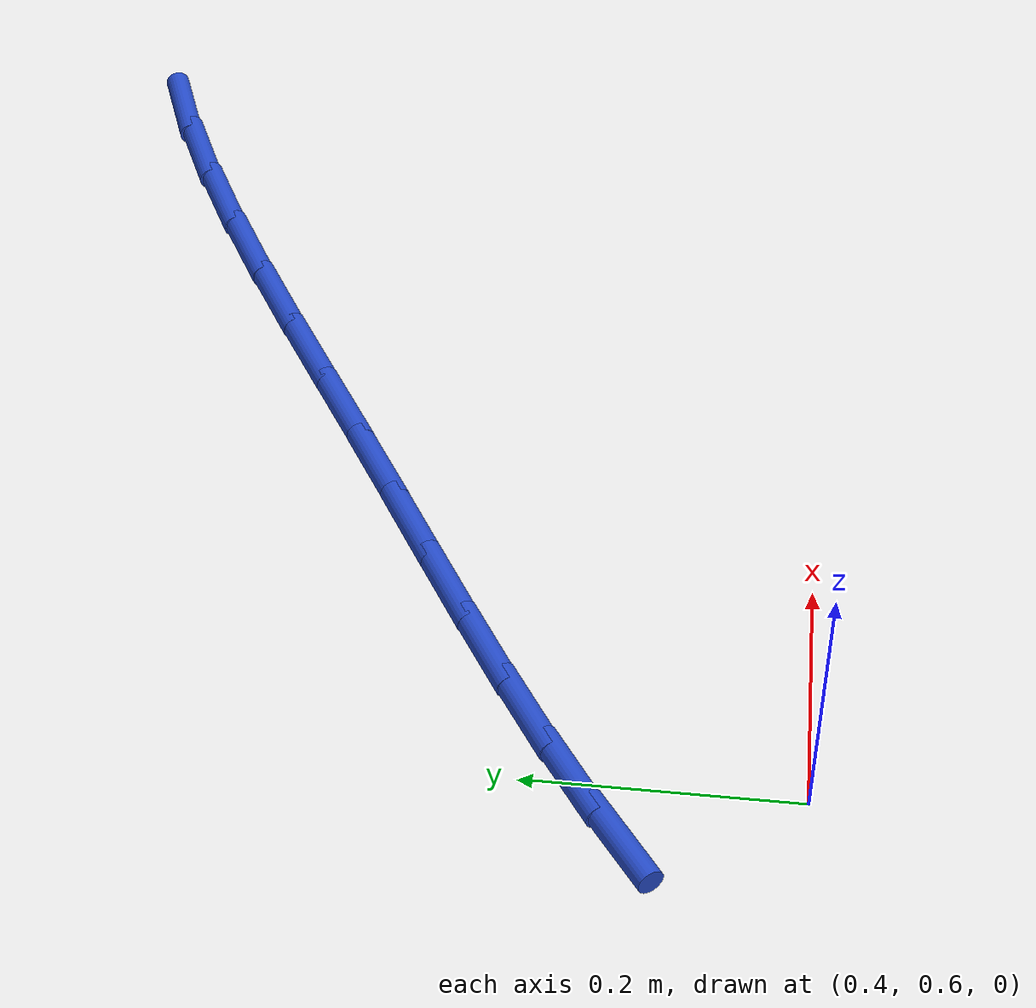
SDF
<sdf version="1.6">
 <world name="default">
  <model name="ground_plane">
   <static>1</static>
   <link name="link">
    <collision name="collision">
     <geometry><plane><normal>0 0 1</normal><size>100 100</size></plane></geometry>
     <surface><friction><ode><mu>100</mu><mu2>50</mu2></ode></friction></surface>
    </collision>
    <visual name="visual">
     <cast_shadows>0</cast_shadows>
     <geometry><plane><normal>0 0 1</normal><size>100 100</size></plane></geometry>
     <material>
      <script><uri>file://media/materials/scripts/gazebo.material</uri><name>Gazebo/WhiteGlow</name></script>
     </material>
    </visual>
   </link>
  </model>
  <model name="line">
   <link name="link_13">
    <pose>0.3471662750646311 0.7265214385461141 0.01 0 1.57 0.6140996113163534</pose>
    <collision name="collision">
     <geometry><cylinder><radius>0.01</radius><length>0.08</length></cylinder></geometry>
    </collision>
    <visual name="visual">
     <material>
      <script><name>Gazebo/Blue</name><uri>file://media/materials/scripts/gazebo.material</uri></script>
     </material>
     <geometry><cylinder><radius>0.01</radius><length>0.08</length></cylinder></geometry>
    </visual>
   </link>
   <link name="link_14">
    <pose>0.3993014699873902 0.7632787661004067 0.01 0 1.57 0.5737753299547165</pose>
    <collision name="collision">
     <geometry><cylinder><radius>0.01</radius><length>0.08</length></cylinder></geometry>
    </collision>
    <visual name="visual">
     <material>
      <script><name>Gazebo/Blue</name><uri>file://media/materials/scripts/gazebo.material</uri></script>
     </material>
     <geometry><cylinder><radius>0.01</radius><length>0.08</length></cylinder></geometry>
    </visual>
   </link>
   <link name="link_15">
    <pose>0.45385488425218723 0.7985370679839667 0.01 0 1.57 0.5437025057210536</pose>
    <collision name="collision">
     <geometry><cylinder><radius>0.01</radius><length>0.08</length></cylinder></geometry>
    </collision>
    <visual name="visual">
     <material>
      <script><name>Gazebo/Blue</name><uri>file://media/materials/scripts/gazebo.material</uri></script>
     </material>
     <geometry><cylinder><radius>0.01</radius><length>0.08</length></cylinder></geometry>
    </visual>
   </link>
   <link name="link_16">
    <pose>0.5105116890601844 0.8327846173130551 0.01 0 1.57 0.5233629050173269</pose>
    <collision name="collision">
     <geometry><cylinder><radius>0.01</radius><length>0.08</length></cylinder></geometry>
    </collision>
    <visual name="visual">
     <material>
      <script><name>Gazebo/Blue</name><uri>file://media/materials/scripts/gazebo.material</uri></script>
     </material>
     <geometry><cylinder><radius>0.01</radius><length>0.08</length></cylinder></geometry>
    </visual>
   </link>
   <link name="link_17">
    <pose>0.5689570556125434 0.8665096872039317 0.01 0 1.57 0.5122166460320136</pose>
    <collision name="collision">
     <geometry><cylinder><radius>0.01</radius><length>0.08</length></cylinder></geometry>
    </collision>
    <visual name="visual">
     <material>
      <script><name>Gazebo/Blue</name><uri>file://media/materials/scripts/gazebo.material</uri></script>
     </material>
     <geometry><cylinder><radius>0.01</radius><length>0.08</length></cylinder></geometry>
    </visual>
   </link>
   <link name="link_18">
    <pose>0.6288761551104262 0.900200550772857 0.01 0 1.57 0.5097557498573061</pose>
    <collision name="collision">
     <geometry><cylinder><radius>0.01</radius><length>0.08</length></cylinder></geometry>
    </collision>
    <visual name="visual">
     <material>
      <script><name>Gazebo/Blue</name><uri>file://media/materials/scripts/gazebo.material</uri></script>
     </material>
     <geometry><cylinder><radius>0.01</radius><length>0.08</length></cylinder></geometry>
    </visual>
   </link>
   <link name="link_19">
    <pose>0.6899541587549947 0.9343454811360915 0.01 0 1.57 0.5152826105698136</pose>
    <collision name="collision">
     <geometry><cylinder><radius>0.01</radius><length>0.08</length></cylinder></geometry>
    </collision>
    <visual name="visual">
     <material>
      <script><name>Gazebo/Blue</name><uri>file://media/materials/scripts/gazebo.material</uri></script>
     </material>
     <geometry><cylinder><radius>0.01</radius><length>0.08</length></cylinder></geometry>
    </visual>
   </link>
   <link name="link_20">
    <pose>0.7518779576738126 0.9694138436906498 0.01 0 1.57 0.5207316458937341</pose>
    <collision name="collision">
     <geometry><cylinder><radius>0.01</radius><length>0.08</length></cylinder></geometry>
    </collision>
    <visual name="visual">
     <material>
      <script><name>Gazebo/Blue</name><uri>file://media/materials/scripts/gazebo.material</uri></script>
     </material>
     <geometry><cylinder><radius>0.01</radius><length>0.08</length></cylinder></geometry>
    </visual>
   </link>
   <link name="link_21">
    <pose>0.8143897958300643 1.0052664918212177 0.01 0 1.57 0.5170604467265502</pose>
    <collision name="collision">
     <geometry><cylinder><radius>0.01</radius><length>0.08</length></cylinder></geometry>
    </collision>
    <visual name="visual">
     <material>
      <script><name>Gazebo/Blue</name><uri>file://media/materials/scripts/gazebo.material</uri></script>
     </material>
     <geometry><cylinder><radius>0.01</radius><length>0.08</length></cylinder></geometry>
    </visual>
   </link>
   <link name="link_22">
    <pose>0.877297793544305 1.0410400783482823 0.01 0 1.57 0.5037556133075145</pose>
    <collision name="collision">
     <geometry><cylinder><radius>0.01</radius><length>0.08</length></cylinder></geometry>
    </collision>
    <visual name="visual">
     <material>
      <script><name>Gazebo/Blue</name><uri>file://media/materials/scripts/gazebo.material</uri></script>
     </material>
     <geometry><cylinder><radius>0.01</radius><length>0.08</length></cylinder></geometry>
    </visual>
   </link>
   <link name="link_23">
    <pose>0.9404139157753243 1.0758289907138208 0.01 0 1.57 0.4803641647228957</pose>
    <collision name="collision">
     <geometry><cylinder><radius>0.01</radius><length>0.08</length></cylinder></geometry>
    </collision>
    <visual name="visual">
     <material>
      <script><name>Gazebo/Blue</name><uri>file://media/materials/scripts/gazebo.material</uri></script>
     </material>
     <geometry><cylinder><radius>0.01</radius><length>0.08</length></cylinder></geometry>
    </visual>
   </link>
   <link name="link_24">
    <pose>1.0035501274819116 1.1087276163598123 0.01 0 1.57 0.4459435724029151</pose>
    <collision name="collision">
     <geometry><cylinder><radius>0.01</radius><length>0.08</length></cylinder></geometry>
    </collision>
    <visual name="visual">
     <material>
      <script><name>Gazebo/Blue</name><uri>file://media/materials/scripts/gazebo.material</uri></script>
     </material>
     <geometry><cylinder><radius>0.01</radius><length>0.08</length></cylinder></geometry>
    </visual>
   </link>
   <link name="link_25">
    <pose>1.0665183936228564 1.138830342728234 0.01 0 1.57 0.39903984248620017</pose>
    <collision name="collision">
     <geometry><cylinder><radius>0.01</radius><length>0.08</length></cylinder></geometry>
    </collision>
    <visual name="visual">
     <material>
      <script><name>Gazebo/Blue</name><uri>file://media/materials/scripts/gazebo.material</uri></script>
     </material>
     <geometry><cylinder><radius>0.01</radius><length>0.08</length></cylinder></geometry>
    </visual>
   </link>
   <link name="link_26">
    <pose>1.1291306791569484 1.165231557261065 0.01 0 1.57 0.33768198554396595</pose>
    <collision name="collision">
     <geometry><cylinder><radius>0.01</radius><length>0.08</length></cylinder></geometry>
    </collision>
    <visual name="visual">
     <material>
      <script><name>Gazebo/Blue</name><uri>file://media/materials/scripts/gazebo.material</uri></script>
     </material>
     <geometry><cylinder><radius>0.01</radius><length>0.08</length></cylinder></geometry>
    </visual>
   </link>
  </model>
 </world>
</sdf>
